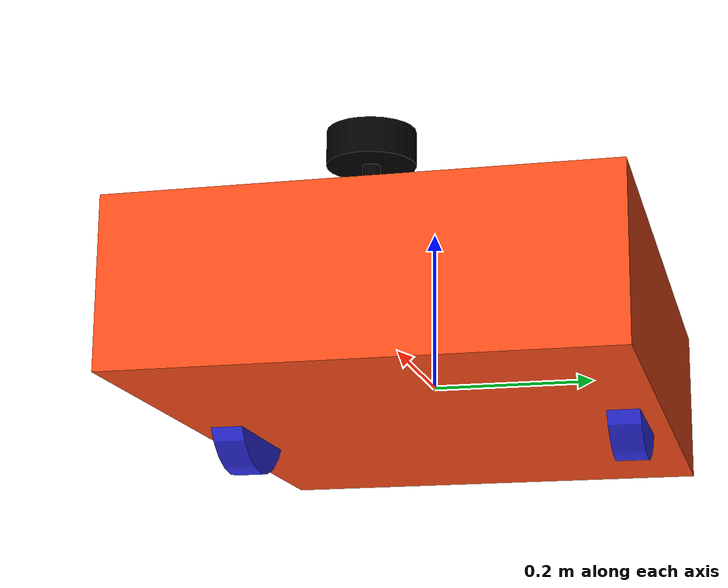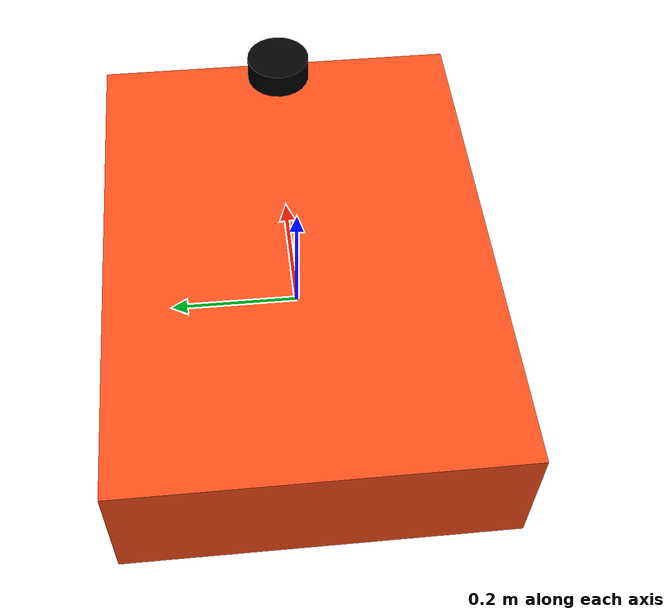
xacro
<?xml version="1.0"?>
<robot name="my_robot" xmlns:xacro="http://www.ros.org/wiki/xacro">

    <!-- Base Link -->
    <link name="base_link">
    </link>

    <!-- BASE_FOOTPRINT LINK -->

    <joint name="base_footprint_joint" type="fixed">
        <parent link="base_link"/>
        <child link="base_footprint"/>
        <origin xyz="0 0 0" rpy="0 0 0"/>
    </joint>

    <link name="base_footprint">
    </link>

    <!-- Chassis -->
    <joint name="chassis_joint" type="fixed">
        <parent link="base_link"/>
        <child link="chassis"/>
        <origin xyz="0.0 0 -0.01"/>
    </joint>
    <link name="chassis">
        <visual>
            <origin xyz="0.0 0 0.055"/>
            <geometry>
                <box size="0.80 0.58 0.20"/>
            </geometry>
            <material name="orange">
                <color rgba="1 0.3 0.1 1"/>
            </material>
        </visual>
        <collision>
            <origin xyz="0.15 0 0.055"/>
            <geometry>
                <box size="0.30 0.16 0.11"/>
            </geometry>
        </collision>
        <inertial>
            <mass value="1.0"/>
            <origin xyz="0.15 0 0.055" rpy="0 0 0"/>
            <inertia ixx="0.0011" ixy="0" ixz="0" iyy="0.0011" iyz="0" izz="0.0011"/>
        </inertial>
    </link>

    <!-- Left Wheel -->
    <joint name="left_wheel_joint" type="continuous">
        <parent link="base_link"/>
        <child link="left_wheel"/>
        <origin xyz="0 0.245 0" rpy="-1.5708 0 0" />
        <axis xyz="0 0 1"/>
    </joint>
    <link name="left_wheel">
        <visual>
            <geometry>
                <cylinder radius="0.1" length="0.04"/>
            </geometry>
            <material name="blue">
                <color rgba="0.2 0.2 1 1"/>
            </material>
        </visual>
        <collision>
            <geometry>
                <cylinder radius="0.01" length="0.04"/>
            </geometry>
        </collision>
        <inertial>
            <mass value="0.05"/>
            <origin xyz="0 0 0" rpy="0 0 0"/>
            <inertia ixx="0.00001" ixy="0" ixz="0" iyy="0.00001" iyz="0" izz="0.00001"/>
        </inertial>
    </link>

    <!-- Right Wheel -->
    <joint name="right_wheel_joint" type="continuous">
        <parent link="base_link"/>
        <child link="right_wheel"/>
        <origin xyz="0 -0.245 0" rpy="1.5708 0 0" />
        <axis xyz="0 0 -1"/>
    </joint>
    <link name="right_wheel">
        <visual>
            <geometry>
                <cylinder radius="0.1" length="0.04"/>
            </geometry>
            <material name="blue">
                <color rgba="0.2 0.2 1 1"/>
            </material>
        </visual>
        <collision>
            <geometry>
                <cylinder radius="0.1" length="0.04"/>
            </geometry>
        </collision>
        <inertial>
            <mass value="0.05"/>
            <origin xyz="0 0 0" rpy="0 0 0"/>
            <inertia ixx="0.00001" ixy="0" ixz="0" iyy="0.00001" iyz="0" izz="0.00001"/>
        </inertial>
    </link>

    <!-- Laser Joint -->
    <joint name="laser_joint" type="fixed">
        <parent link="base_link"/>
        <child link="laser_frame"/>
        <origin xyz="0.33 0 0.20" rpy="0 0 3.14159"/>
    </joint>

    <!-- Laser Frame -->
    <link name="laser_frame">
        <visual>
            <geometry>
                <cylinder radius="0.05" length="0.04"/>
            </geometry>
            <material name="black">
                <color rgba="0.0 0.0 0.0 1.0"/>
            </material>
        </visual>
        <visual>
            <origin xyz="0 0 -0.05"/>
            <geometry>
                <cylinder radius="0.01" length="0.1"/>
            </geometry>
            <material name="black">
                <color rgba="0.0 0.0 0.0 1.0"/>
            </material>
        </visual>
    </link>
    <!-- IMU -->

</robot>
